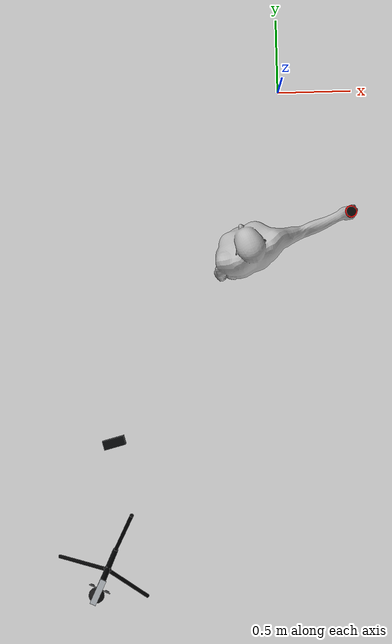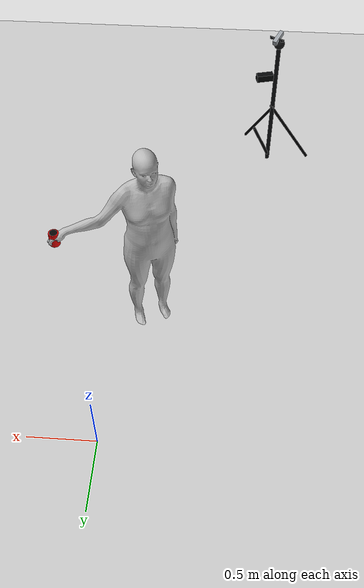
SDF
<sdf version="1.7">
 <world name="default">
  <plugin name="gz::sim::systems::Physics" filename="gz-sim-physics-system"/>
  <plugin name="gz::sim::systems::UserCommands" filename="gz-sim-user-commands-system"/>
  <plugin name="gz::sim::systems::SceneBroadcaster" filename="gz-sim-scene-broadcaster-system"/>
  <plugin name="gz::sim::systems::Contact" filename="gz-sim-contact-system"/>
  <plugin name="gz::sim::systems::Sensors" filename="gz-sim-sensors-system">
   <render_engine>ogre2</render_engine>
  </plugin>
  <include><uri>https://fuel.gazebosim.org/1.0/OpenRobotics/models/Ground Plane</uri></include>
  <include><uri>https://fuel.gazebosim.org/1.0/OpenRobotics/models/Sun</uri></include>
  <model name="red_cup_target">
   <pose>0.34 -0.93 1.065 0 0 0</pose>
   <static>true</static>
   <link name="cup_body">
    <inertial>
     <mass>0.08</mass>
     <inertia><ixx>0.00005</ixx><iyy>0.00005</iyy><izz>0.00004</izz></inertia>
    </inertial>
    <collision name="cup_collision">
     <geometry><cylinder><radius>0.035</radius><length>0.105</length></cylinder></geometry>
    </collision>
    <visual name="cup_red_outer">
     <geometry><cylinder><radius>0.036</radius><length>0.105</length></cylinder></geometry>
     <material>
      <ambient>0.9 0.03 0.02 1</ambient>
      <diffuse>0.9 0.03 0.02 1</diffuse>
      <specular>0.3 0.08 0.06 1</specular>
     </material>
    </visual>
    <visual name="cup_dark_inner">
     <pose>0 0 0.054 0 0 0</pose>
     <geometry><cylinder><radius>0.028</radius><length>0.004</length></cylinder></geometry>
     <material><ambient>0.03 0.02 0.018 1</ambient><diffuse>0.03 0.02 0.018 1</diffuse></material>
    </visual>
   </link>
  </model>
  <include><uri>model://smplx_operator</uri><name>smplx_operator_visual</name></include>
  <model name="realsense_d455_tripod">
   <pose>-1.20 -3.10 0 0 0 1.12</pose>
   <static>true</static>
   <link name="tripod_and_camera">
    <visual name="center_column">
     <pose>0 0 0.62 0 0 0</pose>
     <geometry><cylinder><radius>0.018</radius><length>1.24</length></cylinder></geometry>
     <material><ambient>0.05 0.055 0.06 1</ambient><diffuse>0.05 0.055 0.06 1</diffuse></material>
    </visual>
    <collision name="center_column_collision">
     <pose>0 0 0.62 0 0 0</pose>
     <geometry><cylinder><radius>0.018</radius><length>1.24</length></cylinder></geometry>
    </collision>
    <visual name="leg_front">
     <pose>0.18 0 0.32 0 0.58 0</pose>
     <geometry><cylinder><radius>0.012</radius><length>0.72</length></cylinder></geometry>
     <material><ambient>0.02 0.02 0.023 1</ambient><diffuse>0.02 0.02 0.023 1</diffuse></material>
    </visual>
    <visual name="leg_left">
     <pose>-0.09 0.156 0.32 0 -0.58 2.094</pose>
     <geometry><cylinder><radius>0.012</radius><length>0.72</length></cylinder></geometry>
     <material><ambient>0.02 0.02 0.023 1</ambient><diffuse>0.02 0.02 0.023 1</diffuse></material>
    </visual>
    <visual name="leg_right">
     <pose>-0.09 -0.156 0.32 0 -0.58 -2.094</pose>
     <geometry><cylinder><radius>0.012</radius><length>0.72</length></cylinder></geometry>
     <material><ambient>0.02 0.02 0.023 1</ambient><diffuse>0.02 0.02 0.023 1</diffuse></material>
    </visual>
    <visual name="tripod_head">
     <pose>0 0 1.26 0 0 0</pose>
     <geometry><sphere><radius>0.045</radius></sphere></geometry>
     <material><ambient>0.08 0.08 0.085 1</ambient><diffuse>0.08 0.08 0.085 1</diffuse></material>
    </visual>
    <visual name="d455_body">
     <pose>0.04 0 1.34 0 0.20 0</pose>
     <geometry><box><size>0.145 0.035 0.035</size></box></geometry>
     <material>
      <ambient>0.62 0.64 0.66 1</ambient>
      <diffuse>0.62 0.64 0.66 1</diffuse>
      <specular>0.25 0.25 0.25 1</specular>
     </material>
    </visual>
    <visual name="d455_front_glass">
     <pose>0.06 0 1.34 0 0.20 0</pose>
     <geometry><box><size>0.004 0.13 0.026</size></box></geometry>
     <material><ambient>0.01 0.012 0.016 1</ambient><diffuse>0.01 0.012 0.016 1</diffuse></material>
    </visual>
    <visual name="d455_left_lens">
     <pose>0.064 0.045 1.34 0 1.5708 0</pose>
     <geometry><cylinder><radius>0.012</radius><length>0.006</length></cylinder></geometry>
     <material><ambient>0.005 0.005 0.008 1</ambient><diffuse>0.005 0.005 0.008 1</diffuse></material>
    </visual>
    <visual name="d455_right_lens">
     <pose>0.064 -0.045 1.34 0 1.5708 0</pose>
     <geometry><cylinder><radius>0.012</radius><length>0.006</length></cylinder></geometry>
     <material><ambient>0.005 0.005 0.008 1</ambient><diffuse>0.005 0.005 0.008 1</diffuse></material>
    </visual>
    <visual name="d455_projector">
     <pose>0.064 0 1.34 0 1.5708 0</pose>
     <geometry><cylinder><radius>0.01</radius><length>0.006</length></cylinder></geometry>
     <material><ambient>0.0 0.08 0.16 1</ambient><diffuse>0.0 0.12 0.25 1</diffuse></material>
    </visual>
    <sensor name="d455_rgbd_sensor" type="rgbd_camera">
     <pose>0.08 0 1.44 0 0.12 0</pose>
     <always_on>true</always_on>
     <update_rate>15</update_rate>
     <topic>/tripod_d455/depth</topic>
     <camera>
      <horizontal_fov>2.05</horizontal_fov>
      <image><width>848</width><height>480</height><format>R8G8B8</format></image>
      <clip><near>0.1</near><far>8.0</far></clip>
      <depth_camera><clip><near>0.1</near><far>8.0</far></clip></depth_camera>
     </camera>
    </sensor>
   </link>
  </model>
  <model name="retarget_closeup_camera">
   <pose>-1.05 -2.20 1.55 0 0 0.25</pose>
   <static>true</static>
   <link name="closeup_camera_link">
    <visual name="camera_body">
     <geometry><box><size>0.12 0.05 0.05</size></box></geometry>
     <material><ambient>0.02 0.025 0.03 1</ambient><diffuse>0.02 0.025 0.03 1</diffuse></material>
    </visual>
    <sensor name="retarget_closeup_sensor" type="camera">
     <pose>0 0 0 0 0.22 0.55</pose>
     <always_on>true</always_on>
     <update_rate>15</update_rate>
     <topic>/retarget_closeup/image</topic>
     <camera>
      <horizontal_fov>0.78</horizontal_fov>
      <image><width>1600</width><height>1000</height><format>R8G8B8</format></image>
      <clip><near>0.05</near><far>6.0</far></clip>
     </camera>
    </sensor>
   </link>
  </model>
  <physics type="ode">
   <max_step_size>0.001</max_step_size>
   <real_time_factor>1</real_time_factor>
   <real_time_update_rate>1000</real_time_update_rate>
   <gravity>0 0 0</gravity>
  </physics>
 </world>
</sdf>

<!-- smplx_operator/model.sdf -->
<sdf version="1.10">
  <model name="smplx_operator">
    <static>true</static>
    <pose>-0.283 -1.127 0 0 0 3.55</pose>
    <link name="body">
      <visual name="smplx_body_visual">
        <pose>0 0 1.26 1.5708 0 0</pose>
        <geometry>
          <mesh>
            <uri>model://smplx_operator/meshes/smplx_operator.obj</uri>
            <scale>1 1 1</scale>
          </mesh>
        </geometry>
      </visual>
      <collision name="torso_proxy_collision">
        <pose>0 0 1.0 0 0 0</pose>
        <geometry>
          <box>
            <size>0.36 0.22 0.72</size>
          </box>
        </geometry>
      </collision>
      <collision name="head_proxy_collision">
        <pose>0 0 1.55 0 0 0</pose>
        <geometry>
          <sphere>
            <radius>0.12</radius>
          </sphere>
        </geometry>
      </collision>
    </link>
  </model>
</sdf>
